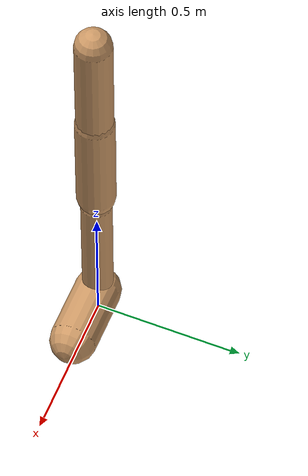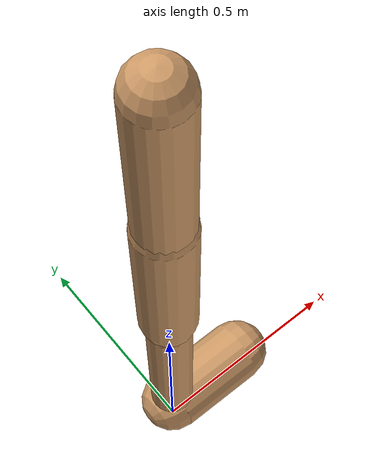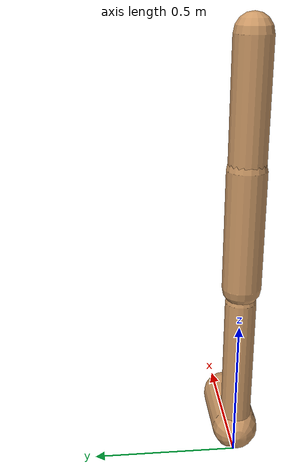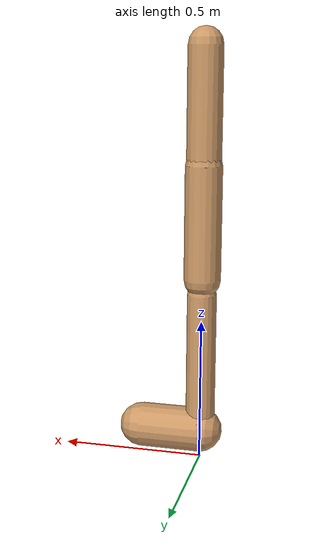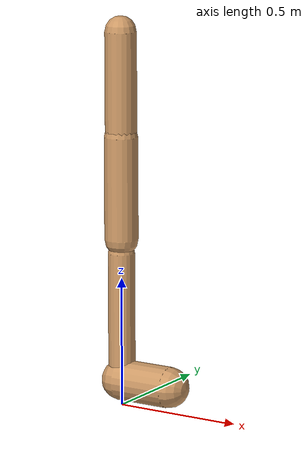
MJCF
<mujoco model="walker2d">
  <compiler angle="degree" coordinate="global" inertiafromgeom="true" />
  <default>
    <joint armature="0.01" damping=".1" limited="true" />
    <geom conaffinity="0" condim="3" contype="1" density="1000" friction="0.8 .1 .1" rgba="0.8 0.6 .4 1" />
  </default>
  <option integrator="RK4" timestep="0.002" />
  <worldbody>

    <body name="torso" pos="0 0 -0.11305857965679499">
      <joint armature="0" axis="1 0 0" damping="0" limited="false" name="ignorex" pos="0 0 0" stiffness="0" type="slide" />
      <joint armature="0" axis="0 0 1" damping="0" limited="false" name="ignorez" pos="0 0 0" ref="1.25" stiffness="0" type="slide" />
      <joint armature="0" axis="0 1 0" damping="0" limited="false" name="ignorey" pos="0 0 0" stiffness="0" type="hinge" />
      <geom fromto="0 0 1.45 0 0 1.05" name="torso_geom" size="0.06064807282189758" type="capsule" />
      <body name="thigh">
        <joint axis="0 -1 0" name="thigh_joint" pos="0 0 1.05" range="-150 0" type="hinge" />
        <geom fromto="0.0 0.0 1.05 0.0 0.0 0.6535540640479555" name="thigh_geom" size="0.06468272977380174" type="capsule" />
        <body name="leg" pos="0.0 0.0 0.053554064047955485">
          <joint axis="0 -1 0" name="leg_joint" pos="0 0 0.6" range="-150 0" type="hinge" />
          <geom fromto="0.0 0.0 0.6 0.0 0.0 0.15950451560883946" name="leg_geom" size="0.05174618381904139" type="capsule" />
          <body name="foot" pos="0.0 0.0 0.05950451560883946">
            <joint axis="0 -1 0" name="foot_joint" pos="0 0 0.1" range="-45 45" type="hinge" />
            <geom fromto="-0.0 0.0 0.10000000000000002 0.21284428254138088 0.0 0.10000000000000002" name="foot_geom" size="0.07867232036624602" type="capsule" />
          </body>
        </body>
      </body>

      <body name="thigh_left">
        <joint axis="0 -1 0" name="thigh_left_joint" pos="0 0 1.05" range="-150 0" type="hinge" />
        <geom fromto="0.0 0.0 1.05 0.0 0.0 0.6535540640479555" name="thigh_left_geom" rgba=".7 .3 .6 1" size="0.06468272977380174" type="capsule" />
        <body name="leg_left" pos="0.0 0.0 0.053554064047955485">
          <joint axis="0 -1 0" name="leg_left_joint" pos="0 0 0.6" range="-150 0" type="hinge" />
          <geom fromto="0.0 0.0 0.6 0.0 0.0 0.15950451560883946" name="leg_left_geom" rgba=".7 .3 .6 1" size="0.05174618381904139" type="capsule" />
          <body name="foot_left" pos="0.0 0.0 0.05950451560883946">
            <joint axis="0 -1 0" name="foot_left_joint" pos="0 0 0.1" range="-45 45" type="hinge" />
            <geom fromto="-0.0 0.0 0.10000000000000002 0.21284428254138088 0.0 0.10000000000000002" name="foot_left_geom" rgba=".7 .3 .6 1" size="0.07867232036624602" type="capsule" />
          </body>
        </body>
      </body>
    </body>
  </worldbody>
  <actuator>

    <motor ctrllimited="true" ctrlrange="-1.0 1.0" gear="100" joint="thigh_joint" />
    <motor ctrllimited="true" ctrlrange="-1.0 1.0" gear="100" joint="leg_joint" />
    <motor ctrllimited="true" ctrlrange="-1.0 1.0" gear="100" joint="foot_joint" />
    <motor ctrllimited="true" ctrlrange="-1.0 1.0" gear="100" joint="thigh_left_joint" />
    <motor ctrllimited="true" ctrlrange="-1.0 1.0" gear="100" joint="leg_left_joint" />
    <motor ctrllimited="true" ctrlrange="-1.0 1.0" gear="100" joint="foot_left_joint" />

  </actuator>
</mujoco>
